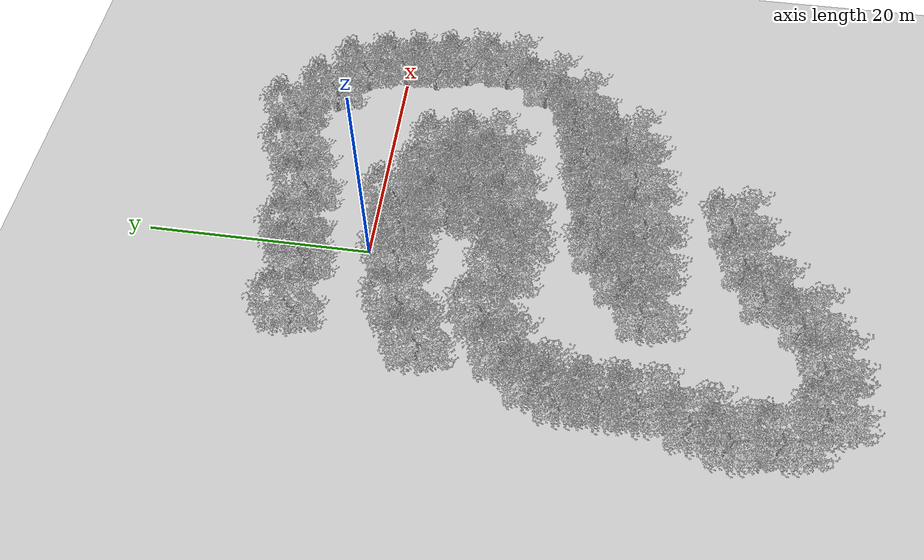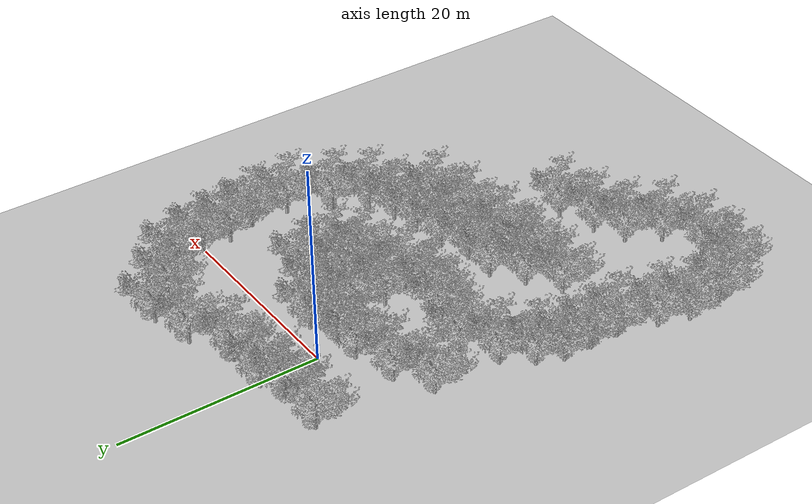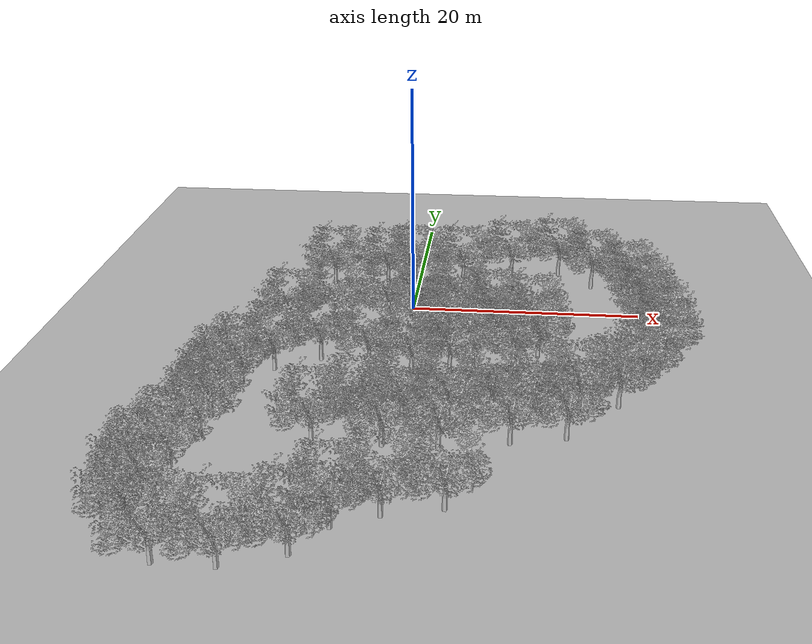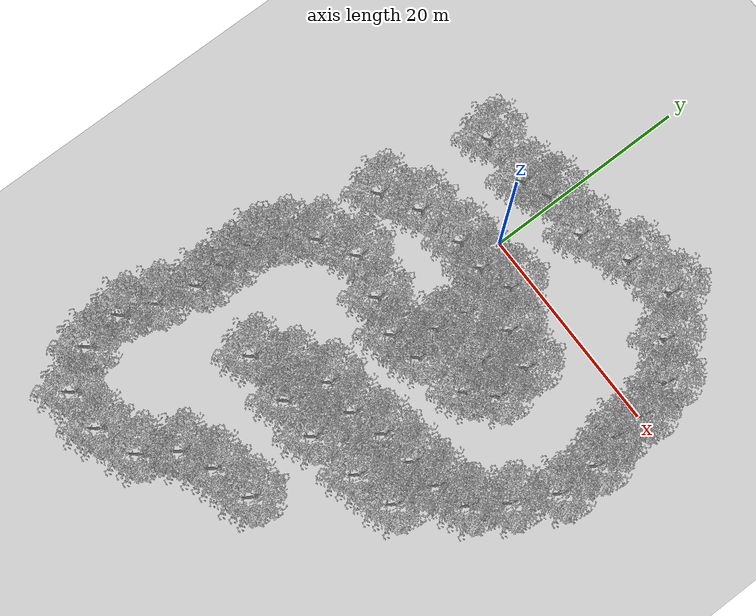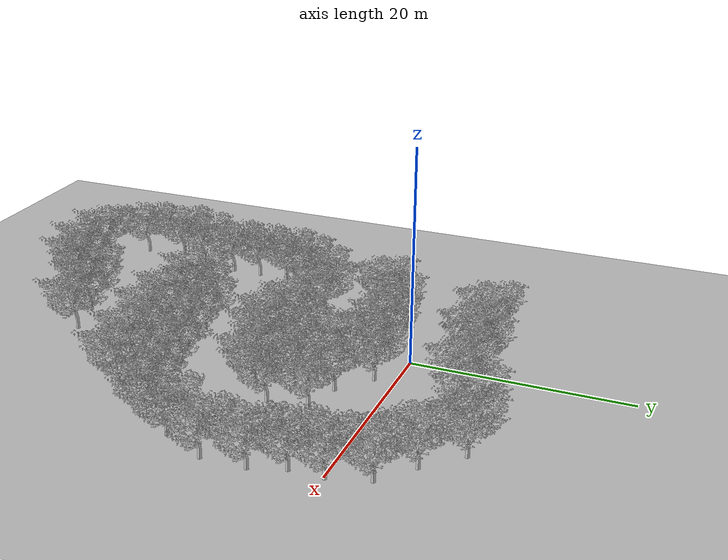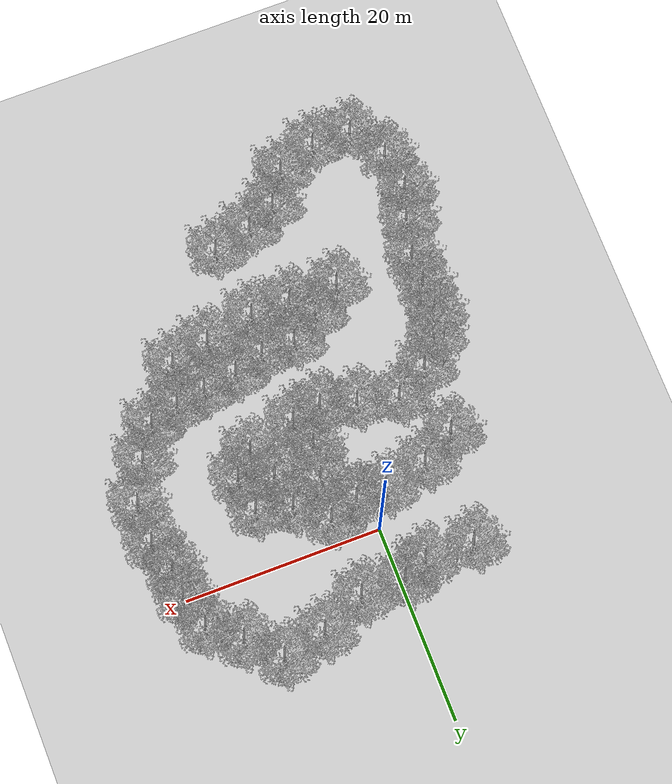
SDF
<gazebo version="1.2">
 <world name="default">
  <scene>
   <grid>0</grid>
   <ambient>0.000000 0.000000 0.000000 1.000000</ambient>
   <background>0.700000 0.700000 0.700000 1.000000</background>
   <shadows>1</shadows>
  </scene>
  <light name="sun" type="directional">
   <pose>0.000000 0.000000 10.000000 0.000000 -0.000000 0.000000</pose>
   <diffuse>0.800000 0.800000 0.800000 1.000000</diffuse>
   <specular>0.100000 0.100000 0.100000 1.000000</specular>
   <attenuation>
    <range>1000.000000</range>
    <constant>0.900000</constant>
    <linear>0.100000</linear>
    <quadratic>0.010000</quadratic>
   </attenuation>
   <direction>0.500000 0.000000 -1.000000</direction>
  </light>
  <model name="ground_plane">
   <static>1</static>
   <link name="link">
    <collision name="collision">
     <geometry>
      <plane><normal>0.000000 0.000000 1.000000</normal><size>100.000000 100.000000</size></plane>
     </geometry>
     <surface><friction><ode><mu>100.000000</mu><mu2>50.000000</mu2></ode></friction></surface>
    </collision>
    <visual name="visual">
     <cast_shadows>0</cast_shadows>
     <geometry>
      <plane><normal>0.000000 0.000000 1.000000</normal><size>100.000000 100.000000</size></plane>
     </geometry>
     <material>
      <script><uri>file://media/materials/scripts/gazebo.material</uri><name>Gazebo/Grey</name></script>
     </material>
    </visual>
    <velocity_decay><linear>0.000000</linear><angular>0.000000</angular></velocity_decay>
   </link>
  </model>
  <physics type="ode">
   <update_rate>1000.000000</update_rate>
   <gravity>0.000000 0.000000 -9.800000</gravity>
  </physics>
  <model name="finihed">
   <pose>8.508060 8.000000 0.000000 0.000000 -0.000000 0.000000</pose>
   <static>1</static>
   <link name="link">
    <inertial>
     <mass>10.000000</mass>
     <inertia>
      <ixx>0.001000</ixx>
      <ixy>0.000000</ixy>
      <ixz>0.000000</ixz>
      <iyy>0.001000</iyy>
      <iyz>0.000000</iyz>
      <izz>0.001000</izz>
     </inertia>
    </inertial>
    <collision name="collision">
     <geometry><cylinder><radius>0.150000</radius><length>5.000000</length></cylinder></geometry>
    </collision>
    <visual name="visual">
     <geometry>
      <mesh><uri>model://finihed/meshes/finihed.dae</uri><scale>1.000000 1.000000 1.000000</scale></mesh>
     </geometry>
    </visual>
    <velocity_decay><linear>0.000000</linear><angular>0.000000</angular></velocity_decay>
   </link>
  </model>
  <model name="finihed_0">
   <pose>-0.515080 6.000000 0.000000 0.000000 -0.000000 0.000000</pose>
   <static>1</static>
   <link name="link">
    <inertial>
     <mass>10.000000</mass>
     <inertia>
      <ixx>0.001000</ixx>
      <ixy>0.000000</ixy>
      <ixz>0.000000</ixz>
      <iyy>0.001000</iyy>
      <iyz>0.000000</iyz>
      <izz>0.001000</izz>
     </inertia>
    </inertial>
    <collision name="collision">
     <geometry><cylinder><radius>0.150000</radius><length>5.000000</length></cylinder></geometry>
    </collision>
    <visual name="visual">
     <geometry>
      <mesh><uri>model://finihed/meshes/finihed.dae</uri><scale>1.000000 1.000000 1.000000</scale></mesh>
     </geometry>
    </visual>
    <velocity_decay><linear>0.000000</linear><angular>0.000000</angular></velocity_decay>
   </link>
  </model>
  <model name="finihed_1">
   <pose>20.000000 0.000000 0.000000 0.000000 -0.000000 0.000000</pose>
   <static>1</static>
   <link name="link">
    <inertial>
     <mass>10.000000</mass>
     <inertia>
      <ixx>0.001000</ixx>
      <ixy>0.000000</ixy>
      <ixz>0.000000</ixz>
      <iyy>0.001000</iyy>
      <iyz>0.000000</iyz>
      <izz>0.001000</izz>
     </inertia>
    </inertial>
    <collision name="collision">
     <geometry><cylinder><radius>0.150000</radius><length>5.000000</length></cylinder></geometry>
    </collision>
    <visual name="visual">
     <geometry>
      <mesh><uri>model://finihed/meshes/finihed.dae</uri><scale>1.000000 1.000000 1.000000</scale></mesh>
     </geometry>
    </visual>
    <velocity_decay><linear>0.000000</linear><angular>0.000000</angular></velocity_decay>
   </link>
  </model>
  <model name="finihed_2">
   <pose>16.000000 6.000000 0.000000 0.000000 -0.000000 0.000000</pose>
   <static>1</static>
   <link name="link">
    <inertial>
     <mass>10.000000</mass>
     <inertia>
      <ixx>0.001000</ixx>
      <ixy>0.000000</ixy>
      <ixz>0.000000</ixz>
      <iyy>0.001000</iyy>
      <iyz>0.000000</iyz>
      <izz>0.001000</izz>
     </inertia>
    </inertial>
    <collision name="collision">
     <geometry><cylinder><radius>0.150000</radius><length>5.000000</length></cylinder></geometry>
    </collision>
    <visual name="visual">
     <geometry>
      <mesh><uri>model://finihed/meshes/finihed.dae</uri><scale>1.000000 1.000000 1.000000</scale></mesh>
     </geometry>
    </visual>
    <velocity_decay><linear>0.000000</linear><angular>0.000000</angular></velocity_decay>
   </link>
  </model>
  <model name="finihed_3">
   <pose>-8.000000 5.000000 0.000000 0.000000 -0.000000 0.000000</pose>
   <static>1</static>
   <link name="link">
    <inertial>
     <mass>10.000000</mass>
     <inertia>
      <ixx>0.001000</ixx>
      <ixy>0.000000</ixy>
      <ixz>0.000000</ixz>
      <iyy>0.001000</iyy>
      <iyz>0.000000</iyz>
      <izz>0.001000</izz>
     </inertia>
    </inertial>
    <collision name="collision">
     <geometry><cylinder><radius>0.150000</radius><length>5.000000</length></cylinder></geometry>
    </collision>
    <visual name="visual">
     <geometry>
      <mesh><uri>model://finihed/meshes/finihed.dae</uri><scale>1.000000 1.000000 1.000000</scale></mesh>
     </geometry>
    </visual>
    <velocity_decay><linear>0.000000</linear><angular>0.000000</angular></velocity_decay>
   </link>
  </model>
  <model name="finihed_4">
   <pose>1.000000 -3.000000 0.000000 0.000000 -0.000000 0.000000</pose>
   <static>1</static>
   <link name="link">
    <inertial>
     <mass>10.000000</mass>
     <inertia>
      <ixx>0.001000</ixx>
      <ixy>0.000000</ixy>
      <ixz>0.000000</ixz>
      <iyy>0.001000</iyy>
      <iyz>0.000000</iyz>
      <izz>0.001000</izz>
     </inertia>
    </inertial>
    <collision name="collision">
     <geometry><cylinder><radius>0.150000</radius><length>5.000000</length></cylinder></geometry>
    </collision>
    <visual name="visual">
     <geometry>
      <mesh><uri>model://finihed/meshes/finihed.dae</uri><scale>1.000000 1.000000 1.000000</scale></mesh>
     </geometry>
    </visual>
    <velocity_decay><linear>0.000000</linear><angular>0.000000</angular></velocity_decay>
   </link>
  </model>
  <model name="finihed_5">
   <pose>7.000000 -4.502550 0.000000 0.000000 -0.000000 0.000000</pose>
   <static>1</static>
   <link name="link">
    <inertial>
     <mass>10.000000</mass>
     <inertia>
      <ixx>0.001000</ixx>
      <ixy>0.000000</ixy>
      <ixz>0.000000</ixz>
      <iyy>0.001000</iyy>
      <iyz>0.000000</iyz>
      <izz>0.001000</izz>
     </inertia>
    </inertial>
    <collision name="collision">
     <geometry><cylinder><radius>0.150000</radius><length>5.000000</length></cylinder></geometry>
    </collision>
    <visual name="visual">
     <geometry>
      <mesh><uri>model://finihed/meshes/finihed.dae</uri><scale>1.000000 1.000000 1.000000</scale></mesh>
     </geometry>
    </visual>
    <velocity_decay><linear>0.000000</linear><angular>0.000000</angular></velocity_decay>
   </link>
  </model>
  <model name="finihed_6">
   <pose>11.000000 -9.000000 0.000000 0.000000 -0.000000 0.000000</pose>
   <static>1</static>
   <link name="link">
    <inertial>
     <mass>10.000000</mass>
     <inertia>
      <ixx>0.001000</ixx>
      <ixy>0.000000</ixy>
      <ixz>0.000000</ixz>
      <iyy>0.001000</iyy>
      <iyz>0.000000</iyz>
      <izz>0.001000</izz>
     </inertia>
    </inertial>
    <collision name="collision">
     <geometry><cylinder><radius>0.150000</radius><length>5.000000</length></cylinder></geometry>
    </collision>
    <visual name="visual">
     <geometry>
      <mesh><uri>model://finihed/meshes/finihed.dae</uri><scale>1.000000 1.000000 1.000000</scale></mesh>
     </geometry>
    </visual>
    <velocity_decay><linear>0.000000</linear><angular>0.000000</angular></velocity_decay>
   </link>
  </model>
  <model name="finihed_7">
   <pose>19.000000 3.502910 0.000000 0.000000 -0.000000 0.000000</pose>
   <static>1</static>
   <link name="link">
    <inertial>
     <mass>10.000000</mass>
     <inertia>
      <ixx>0.001000</ixx>
      <ixy>0.000000</ixy>
      <ixz>0.000000</ixz>
      <iyy>0.001000</iyy>
      <iyz>0.000000</iyz>
      <izz>0.001000</izz>
     </inertia>
    </inertial>
    <collision name="collision">
     <geometry><cylinder><radius>0.150000</radius><length>5.000000</length></cylinder></geometry>
    </collision>
    <visual name="visual">
     <geometry>
      <mesh><uri>model://finihed/meshes/finihed.dae</uri><scale>1.000000 1.000000 1.000000</scale></mesh>
     </geometry>
    </visual>
    <velocity_decay><linear>0.000000</linear><angular>0.000000</angular></velocity_decay>
   </link>
  </model>
  <model name="finihed_8">
   <pose>13.000000 9.000000 0.000000 0.000000 -0.000000 0.000000</pose>
   <static>1</static>
   <link name="link">
    <inertial>
     <mass>10.000000</mass>
     <inertia>
      <ixx>0.001000</ixx>
      <ixy>0.000000</ixy>
      <ixz>0.000000</ixz>
      <iyy>0.001000</iyy>
      <iyz>0.000000</iyz>
      <izz>0.001000</izz>
     </inertia>
    </inertial>
    <collision name="collision">
     <geometry><cylinder><radius>0.150000</radius><length>5.000000</length></cylinder></geometry>
    </collision>
    <visual name="visual">
     <geometry>
      <mesh><uri>model://finihed/meshes/finihed.dae</uri><scale>1.000000 1.000000 1.000000</scale></mesh>
     </geometry>
    </visual>
    <velocity_decay><linear>0.000000</linear><angular>0.000000</angular></velocity_decay>
   </link>
  </model>
  <model name="finihed_9">
   <pose>4.000000 6.000000 0.000000 0.000000 -0.000000 0.000000</pose>
   <static>1</static>
   <link name="link">
    <inertial>
     <mass>10.000000</mass>
     <inertia>
      <ixx>0.001000</ixx>
      <ixy>0.000000</ixy>
      <ixz>0.000000</ixz>
      <iyy>0.001000</iyy>
      <iyz>0.000000</iyz>
      <izz>0.001000</izz>
     </inertia>
    </inertial>
    <collision name="collision">
     <geometry><cylinder><radius>0.150000</radius><length>5.000000</length></cylinder></geometry>
    </collision>
    <visual name="visual">
     <geometry>
      <mesh><uri>model://finihed/meshes/finihed.dae</uri><scale>1.000000 1.000000 1.000000</scale></mesh>
     </geometry>
    </visual>
    <velocity_decay><linear>0.000000</linear><angular>0.000000</angular></velocity_decay>
   </link>
  </model>
  <model name="finihed_10">
   <pose>4.000000 -2.000000 0.000000 0.000000 -0.000000 0.000000</pose>
   <static>1</static>
   <link name="link">
    <inertial>
     <mass>10.000000</mass>
     <inertia>
      <ixx>0.001000</ixx>
      <ixy>0.000000</ixy>
      <ixz>0.000000</ixz>
      <iyy>0.001000</iyy>
      <iyz>0.000000</iyz>
      <izz>0.001000</izz>
     </inertia>
    </inertial>
    <collision name="collision">
     <geometry><cylinder><radius>0.150000</radius><length>5.000000</length></cylinder></geometry>
    </collision>
    <visual name="visual">
     <geometry>
      <mesh><uri>model://finihed/meshes/finihed.dae</uri><scale>1.000000 1.000000 1.000000</scale></mesh>
     </geometry>
    </visual>
    <velocity_decay><linear>0.000000</linear><angular>0.000000</angular></velocity_decay>
   </link>
  </model>
  <model name="finihed_11">
   <pose>10.517400 -5.416000 0.000000 0.000000 -0.000000 0.000000</pose>
   <static>1</static>
   <link name="link">
    <inertial>
     <mass>10.000000</mass>
     <inertia>
      <ixx>0.001000</ixx>
      <ixy>0.000000</ixy>
      <ixz>0.000000</ixz>
      <iyy>0.001000</iyy>
      <iyz>0.000000</iyz>
      <izz>0.001000</izz>
     </inertia>
    </inertial>
    <collision name="collision">
     <geometry><cylinder><radius>0.150000</radius><length>5.000000</length></cylinder></geometry>
    </collision>
    <visual name="visual">
     <geometry>
      <mesh><uri>model://finihed/meshes/finihed.dae</uri><scale>1.000000 1.000000 1.000000</scale></mesh>
     </geometry>
    </visual>
    <velocity_decay><linear>0.000000</linear><angular>0.000000</angular></velocity_decay>
   </link>
  </model>
  <model name="finihed_12">
   <pose>20.000000 -3.000000 0.000000 0.000000 -0.000000 0.000000</pose>
   <static>1</static>
   <link name="link">
    <inertial>
     <mass>10.000000</mass>
     <inertia>
      <ixx>0.001000</ixx>
      <ixy>0.000000</ixy>
      <ixz>0.000000</ixz>
      <iyy>0.001000</iyy>
      <iyz>0.000000</iyz>
      <izz>0.001000</izz>
     </inertia>
    </inertial>
    <collision name="collision">
     <geometry><cylinder><radius>0.150000</radius><length>5.000000</length></cylinder></geometry>
    </collision>
    <visual name="visual">
     <geometry>
      <mesh><uri>model://finihed/meshes/finihed.dae</uri><scale>1.000000 1.000000 1.000000</scale></mesh>
     </geometry>
    </visual>
    <velocity_decay><linear>0.000000</linear><angular>0.000000</angular></velocity_decay>
   </link>
  </model>
  <model name="finihed_13">
   <pose>21.000000 -6.000000 0.000000 0.000000 -0.000000 0.000000</pose>
   <static>1</static>
   <link name="link">
    <inertial>
     <mass>10.000000</mass>
     <inertia>
      <ixx>0.001000</ixx>
      <ixy>0.000000</ixy>
      <ixz>0.000000</ixz>
      <iyy>0.001000</iyy>
      <iyz>0.000000</iyz>
      <izz>0.001000</izz>
     </inertia>
    </inertial>
    <collision name="collision">
     <geometry><cylinder><radius>0.150000</radius><length>5.000000</length></cylinder></geometry>
    </collision>
    <visual name="visual">
     <geometry>
      <mesh><uri>model://finihed/meshes/finihed.dae</uri><scale>1.000000 1.000000 1.000000</scale></mesh>
     </geometry>
    </visual>
    <velocity_decay><linear>0.000000</linear><angular>0.000000</angular></velocity_decay>
   </link>
  </model>
  <model name="finihed_14">
   <pose>21.000000 -10.000000 0.000000 0.000000 -0.000000 0.000000</pose>
   <static>1</static>
   <link name="link">
    <inertial>
     <mass>10.000000</mass>
     <inertia>
      <ixx>0.001000</ixx>
      <ixy>0.000000</ixy>
      <ixz>0.000000</ixz>
      <iyy>0.001000</iyy>
      <iyz>0.000000</iyz>
      <izz>0.001000</izz>
     </inertia>
    </inertial>
    <collision name="collision">
     <geometry><cylinder><radius>0.150000</radius><length>5.000000</length></cylinder></geometry>
    </collision>
    <visual name="visual">
     <geometry>
      <mesh><uri>model://finihed/meshes/finihed.dae</uri><scale>1.000000 1.000000 1.000000</scale></mesh>
     </geometry>
    </visual>
    <velocity_decay><linear>0.000000</linear><angular>0.000000</angular></velocity_decay>
   </link>
  </model>
  <model name="finihed_15">
   <pose>19.000000 -14.000000 0.000000 0.000000 -0.000000 0.000000</pose>
   <static>1</static>
   <link name="link">
    <inertial>
     <mass>10.000000</mass>
     <inertia>
      <ixx>0.001000</ixx>
      <ixy>0.000000</ixy>
      <ixz>0.000000</ixz>
      <iyy>0.001000</iyy>
      <iyz>0.000000</iyz>
      <izz>0.001000</izz>
     </inertia>
    </inertial>
    <collision name="collision">
     <geometry><cylinder><radius>0.150000</radius><length>5.000000</length></cylinder></geometry>
    </collision>
    <visual name="visual">
     <geometry>
      <mesh><uri>model://finihed/meshes/finihed.dae</uri><scale>1.000000 1.000000 1.000000</scale></mesh>
     </geometry>
    </visual>
    <velocity_decay><linear>0.000000</linear><angular>0.000000</angular></velocity_decay>
   </link>
  </model>
  <model name="finihed_16">
   <pose>17.000000 -17.000000 0.000000 0.000000 -0.000000 0.000000</pose>
   <static>1</static>
   <link name="link">
    <inertial>
     <mass>10.000000</mass>
     <inertia>
      <ixx>0.001000</ixx>
      <ixy>0.000000</ixy>
      <ixz>0.000000</ixz>
      <iyy>0.001000</iyy>
      <iyz>0.000000</iyz>
      <izz>0.001000</izz>
     </inertia>
    </inertial>
    <collision name="collision">
     <geometry><cylinder><radius>0.150000</radius><length>5.000000</length></cylinder></geometry>
    </collision>
    <visual name="visual">
     <geometry>
      <mesh><uri>model://finihed/meshes/finihed.dae</uri><scale>1.000000 1.000000 1.000000</scale></mesh>
     </geometry>
    </visual>
    <velocity_decay><linear>0.000000</linear><angular>0.000000</angular></velocity_decay>
   </link>
  </model>
  <model name="finihed_17">
   <pose>14.000000 -18.000000 0.000000 0.000000 -0.000000 0.000000</pose>
   <static>1</static>
   <link name="link">
    <inertial>
     <mass>10.000000</mass>
     <inertia>
      <ixx>0.001000</ixx>
      <ixy>0.000000</ixy>
      <ixz>0.000000</ixz>
      <iyy>0.001000</iyy>
      <iyz>0.000000</iyz>
      <izz>0.001000</izz>
     </inertia>
    </inertial>
    <collision name="collision">
     <geometry><cylinder><radius>0.150000</radius><length>5.000000</length></cylinder></geometry>
    </collision>
    <visual name="visual">
     <geometry>
      <mesh><uri>model://finihed/meshes/finihed.dae</uri><scale>1.000000 1.000000 1.000000</scale></mesh>
     </geometry>
    </visual>
    <velocity_decay><linear>0.000000</linear><angular>0.000000</angular></velocity_decay>
   </link>
  </model>
  <model name="finihed_18">
   <pose>9.000000 -11.000000 0.000000 0.000000 -0.000000 0.000000</pose>
   <static>1</static>
   <link name="link">
    <inertial>
     <mass>10.000000</mass>
     <inertia>
      <ixx>0.001000</ixx>
      <ixy>0.000000</ixy>
      <ixz>0.000000</ixz>
      <iyy>0.001000</iyy>
      <iyz>0.000000</iyz>
      <izz>0.001000</izz>
     </inertia>
    </inertial>
    <collision name="collision">
     <geometry><cylinder><radius>0.150000</radius><length>5.000000</length></cylinder></geometry>
    </collision>
    <visual name="visual">
     <geometry>
      <mesh><uri>model://finihed/meshes/finihed.dae</uri><scale>1.000000 1.000000 1.000000</scale></mesh>
     </geometry>
    </visual>
    <velocity_decay><linear>0.000000</linear><angular>0.000000</angular></velocity_decay>
   </link>
  </model>
  <model name="finihed_19">
   <pose>4.000000 -12.426700 0.000000 0.000000 -0.000000 0.000000</pose>
   <static>1</static>
   <link name="link">
    <inertial>
     <mass>10.000000</mass>
     <inertia>
      <ixx>0.001000</ixx>
      <ixy>0.000000</ixy>
      <ixz>0.000000</ixz>
      <iyy>0.001000</iyy>
      <iyz>0.000000</iyz>
      <izz>0.001000</izz>
     </inertia>
    </inertial>
    <collision name="collision">
     <geometry><cylinder><radius>0.150000</radius><length>5.000000</length></cylinder></geometry>
    </collision>
    <visual name="visual">
     <geometry>
      <mesh><uri>model://finihed/meshes/finihed.dae</uri><scale>1.000000 1.000000 1.000000</scale></mesh>
     </geometry>
    </visual>
    <velocity_decay><linear>0.000000</linear><angular>0.000000</angular></velocity_decay>
   </link>
  </model>
  <model name="finihed_20">
   <pose>1.000000 -13.000000 0.000000 0.000000 -0.000000 0.000000</pose>
   <static>1</static>
   <link name="link">
    <inertial>
     <mass>10.000000</mass>
     <inertia>
      <ixx>0.001000</ixx>
      <ixy>0.000000</ixy>
      <ixz>0.000000</ixz>
      <iyy>0.001000</iyy>
      <iyz>0.000000</iyz>
      <izz>0.001000</izz>
     </inertia>
    </inertial>
    <collision name="collision">
     <geometry><cylinder><radius>0.150000</radius><length>5.000000</length></cylinder></geometry>
    </collision>
    <visual name="visual">
     <geometry>
      <mesh><uri>model://finihed/meshes/finihed.dae</uri><scale>1.000000 1.000000 1.000000</scale></mesh>
     </geometry>
    </visual>
    <velocity_decay><linear>0.000000</linear><angular>0.000000</angular></velocity_decay>
   </link>
  </model>
  <model name="finihed_21">
   <pose>11.000000 -18.522200 0.000000 0.000000 -0.000000 0.000000</pose>
   <static>1</static>
   <link name="link">
    <inertial>
     <mass>10.000000</mass>
     <inertia>
      <ixx>0.001000</ixx>
      <ixy>0.000000</ixy>
      <ixz>0.000000</ixz>
      <iyy>0.001000</iyy>
      <iyz>0.000000</iyz>
      <izz>0.001000</izz>
     </inertia>
    </inertial>
    <collision name="collision">
     <geometry><cylinder><radius>0.150000</radius><length>5.000000</length></cylinder></geometry>
    </collision>
    <visual name="visual">
     <geometry>
      <mesh><uri>model://finihed/meshes/finihed.dae</uri><scale>1.000000 1.000000 1.000000</scale></mesh>
     </geometry>
    </visual>
    <velocity_decay><linear>0.000000</linear><angular>0.000000</angular></velocity_decay>
   </link>
  </model>
  <model name="finihed_22">
   <pose>7.524440 -19.000000 0.000000 0.000000 -0.000000 0.000000</pose>
   <static>1</static>
   <link name="link">
    <inertial>
     <mass>10.000000</mass>
     <inertia>
      <ixx>0.001000</ixx>
      <ixy>0.000000</ixy>
      <ixz>0.000000</ixz>
      <iyy>0.001000</iyy>
      <iyz>0.000000</iyz>
      <izz>0.001000</izz>
     </inertia>
    </inertial>
    <collision name="collision">
     <geometry><cylinder><radius>0.150000</radius><length>5.000000</length></cylinder></geometry>
    </collision>
    <visual name="visual">
     <geometry>
      <mesh><uri>model://finihed/meshes/finihed.dae</uri><scale>1.000000 1.000000 1.000000</scale></mesh>
     </geometry>
    </visual>
    <velocity_decay><linear>0.000000</linear><angular>0.000000</angular></velocity_decay>
   </link>
  </model>
  <model name="finihed_23">
   <pose>4.400020 -20.000000 0.000000 0.000000 -0.000000 0.000000</pose>
   <static>1</static>
   <link name="link">
    <inertial>
     <mass>10.000000</mass>
     <inertia>
      <ixx>0.001000</ixx>
      <ixy>0.000000</ixy>
      <ixz>0.000000</ixz>
      <iyy>0.001000</iyy>
      <iyz>0.000000</iyz>
      <izz>0.001000</izz>
     </inertia>
    </inertial>
    <collision name="collision">
     <geometry><cylinder><radius>0.150000</radius><length>5.000000</length></cylinder></geometry>
    </collision>
    <visual name="visual">
     <geometry>
      <mesh><uri>model://finihed/meshes/finihed.dae</uri><scale>1.000000 1.000000 1.000000</scale></mesh>
     </geometry>
    </visual>
    <velocity_decay><linear>0.000000</linear><angular>0.000000</angular></velocity_decay>
   </link>
  </model>
  <model name="finihed_24">
   <pose>1.000000 -20.000000 0.000000 0.000000 -0.000000 0.000000</pose>
   <static>1</static>
   <link name="link">
    <inertial>
     <mass>10.000000</mass>
     <inertia>
      <ixx>0.001000</ixx>
      <ixy>0.000000</ixy>
      <ixz>0.000000</ixz>
      <iyy>0.001000</iyy>
      <iyz>0.000000</iyz>
      <izz>0.001000</izz>
     </inertia>
    </inertial>
    <collision name="collision">
     <geometry><cylinder><radius>0.150000</radius><length>5.000000</length></cylinder></geometry>
    </collision>
    <visual name="visual">
     <geometry>
      <mesh><uri>model://finihed/meshes/finihed.dae</uri><scale>1.000000 1.000000 1.000000</scale></mesh>
     </geometry>
    </visual>
    <velocity_decay><linear>0.000000</linear><angular>0.000000</angular></velocity_decay>
   </link>
  </model>
  <model name="finihed_25">
   <pose>7.596890 -8.000000 0.000000 0.000000 -0.000000 0.000000</pose>
   <static>1</static>
   <link name="link">
    <inertial>
     <mass>10.000000</mass>
     <inertia>
      <ixx>0.001000</ixx>
      <ixy>0.000000</ixy>
      <ixz>0.000000</ixz>
      <iyy>0.001000</iyy>
      <iyz>0.000000</iyz>
      <izz>0.001000</izz>
     </inertia>
    </inertial>
    <collision name="collision">
     <geometry><cylinder><radius>0.150000</radius><length>5.000000</length></cylinder></geometry>
    </collision>
    <visual name="visual">
     <geometry>
      <mesh><uri>model://finihed/meshes/finihed.dae</uri><scale>1.000000 1.000000 1.000000</scale></mesh>
     </geometry>
    </visual>
    <velocity_decay><linear>0.000000</linear><angular>0.000000</angular></velocity_decay>
   </link>
  </model>
  <model name="finihed_26">
   <pose>3.431210 -6.503010 0.000000 0.000000 -0.000000 0.000000</pose>
   <static>1</static>
   <link name="link">
    <inertial>
     <mass>10.000000</mass>
     <inertia>
      <ixx>0.001000</ixx>
      <ixy>0.000000</ixy>
      <ixz>0.000000</ixz>
      <iyy>0.001000</iyy>
      <iyz>0.000000</iyz>
      <izz>0.001000</izz>
     </inertia>
    </inertial>
    <collision name="collision">
     <geometry><cylinder><radius>0.150000</radius><length>5.000000</length></cylinder></geometry>
    </collision>
    <visual name="visual">
     <geometry>
      <mesh><uri>model://finihed/meshes/finihed.dae</uri><scale>1.000000 1.000000 1.000000</scale></mesh>
     </geometry>
    </visual>
    <velocity_decay><linear>0.000000</linear><angular>0.000000</angular></velocity_decay>
   </link>
  </model>
  <model name="finihed_27">
   <pose>3.000000 -9.525420 0.000000 0.000000 -0.000000 0.000000</pose>
   <static>1</static>
   <link name="link">
    <inertial>
     <mass>10.000000</mass>
     <inertia>
      <ixx>0.001000</ixx>
      <ixy>0.000000</ixy>
      <ixz>0.000000</ixz>
      <iyy>0.001000</iyy>
      <iyz>0.000000</iyz>
      <izz>0.001000</izz>
     </inertia>
    </inertial>
    <collision name="collision">
     <geometry><cylinder><radius>0.150000</radius><length>5.000000</length></cylinder></geometry>
    </collision>
    <visual name="visual">
     <geometry>
      <mesh><uri>model://finihed/meshes/finihed.dae</uri><scale>1.000000 1.000000 1.000000</scale></mesh>
     </geometry>
    </visual>
    <velocity_decay><linear>0.000000</linear><angular>0.000000</angular></velocity_decay>
   </link>
  </model>
  <model name="finihed_28">
   <pose>-3.000000 5.000000 0.000000 0.000000 -0.000000 0.000000</pose>
   <static>1</static>
   <link name="link">
    <inertial>
     <mass>10.000000</mass>
     <inertia>
      <ixx>0.001000</ixx>
      <ixy>0.000000</ixy>
      <ixz>0.000000</ixz>
      <iyy>0.001000</iyy>
      <iyz>0.000000</iyz>
      <izz>0.001000</izz>
     </inertia>
    </inertial>
    <collision name="collision">
     <geometry><cylinder><radius>0.150000</radius><length>5.000000</length></cylinder></geometry>
    </collision>
    <visual name="visual">
     <geometry>
      <mesh><uri>model://finihed/meshes/finihed.dae</uri><scale>1.000000 1.000000 1.000000</scale></mesh>
     </geometry>
    </visual>
    <velocity_decay><linear>0.000000</linear><angular>0.000000</angular></velocity_decay>
   </link>
  </model>
  <model name="finihed_29">
   <pose>-2.522530 -12.000000 0.000000 0.000000 -0.000000 0.000000</pose>
   <static>1</static>
   <link name="link">
    <inertial>
     <mass>10.000000</mass>
     <inertia>
      <ixx>0.001000</ixx>
      <ixy>0.000000</ixy>
      <ixz>0.000000</ixz>
      <iyy>0.001000</iyy>
      <iyz>0.000000</iyz>
      <izz>0.001000</izz>
     </inertia>
    </inertial>
    <collision name="collision">
     <geometry><cylinder><radius>0.150000</radius><length>5.000000</length></cylinder></geometry>
    </collision>
    <visual name="visual">
     <geometry>
      <mesh><uri>model://finihed/meshes/finihed.dae</uri><scale>1.000000 1.000000 1.000000</scale></mesh>
     </geometry>
    </visual>
    <velocity_decay><linear>0.000000</linear><angular>0.000000</angular></velocity_decay>
   </link>
  </model>
  <model name="finihed_30">
   <pose>-6.565320 -11.000000 0.000000 0.000000 -0.000000 0.000000</pose>
   <static>1</static>
   <link name="link">
    <inertial>
     <mass>10.000000</mass>
     <inertia>
      <ixx>0.001000</ixx>
      <ixy>0.000000</ixy>
      <ixz>0.000000</ixz>
      <iyy>0.001000</iyy>
      <iyz>0.000000</iyz>
      <izz>0.001000</izz>
     </inertia>
    </inertial>
    <collision name="collision">
     <geometry><cylinder><radius>0.150000</radius><length>5.000000</length></cylinder></geometry>
    </collision>
    <visual name="visual">
     <geometry>
      <mesh><uri>model://finihed/meshes/finihed.dae</uri><scale>1.000000 1.000000 1.000000</scale></mesh>
     </geometry>
    </visual>
    <velocity_decay><linear>0.000000</linear><angular>0.000000</angular></velocity_decay>
   </link>
  </model>
  <model name="finihed_31">
   <pose>-10.000000 -13.000000 0.000000 0.000000 -0.000000 0.000000</pose>
   <static>1</static>
   <link name="link">
    <inertial>
     <mass>10.000000</mass>
     <inertia>
      <ixx>0.001000</ixx>
      <ixy>0.000000</ixy>
      <ixz>0.000000</ixz>
      <iyy>0.001000</iyy>
      <iyz>0.000000</iyz>
      <izz>0.001000</izz>
     </inertia>
    </inertial>
    <collision name="collision">
     <geometry><cylinder><radius>0.150000</radius><length>5.000000</length></cylinder></geometry>
    </collision>
    <visual name="visual">
     <geometry>
      <mesh><uri>model://finihed/meshes/finihed.dae</uri><scale>1.000000 1.000000 1.000000</scale></mesh>
     </geometry>
    </visual>
    <velocity_decay><linear>0.000000</linear><angular>0.000000</angular></velocity_decay>
   </link>
  </model>
  <model name="finihed_32">
   <pose>-12.000000 -15.574100 0.000000 0.000000 -0.000000 0.000000</pose>
   <static>1</static>
   <link name="link">
    <inertial>
     <mass>10.000000</mass>
     <inertia>
      <ixx>0.001000</ixx>
      <ixy>0.000000</ixy>
      <ixz>0.000000</ixz>
      <iyy>0.001000</iyy>
      <iyz>0.000000</iyz>
      <izz>0.001000</izz>
     </inertia>
    </inertial>
    <collision name="collision">
     <geometry><cylinder><radius>0.150000</radius><length>5.000000</length></cylinder></geometry>
    </collision>
    <visual name="visual">
     <geometry>
      <mesh><uri>model://finihed/meshes/finihed.dae</uri><scale>1.000000 1.000000 1.000000</scale></mesh>
     </geometry>
    </visual>
    <velocity_decay><linear>0.000000</linear><angular>0.000000</angular></velocity_decay>
   </link>
  </model>
  <model name="finihed_33">
   <pose>-13.000000 -18.000000 0.000000 0.000000 -0.000000 0.000000</pose>
   <static>1</static>
   <link name="link">
    <inertial>
     <mass>10.000000</mass>
     <inertia>
      <ixx>0.001000</ixx>
      <ixy>0.000000</ixy>
      <ixz>0.000000</ixz>
      <iyy>0.001000</iyy>
      <iyz>0.000000</iyz>
      <izz>0.001000</izz>
     </inertia>
    </inertial>
    <collision name="collision">
     <geometry><cylinder><radius>0.150000</radius><length>5.000000</length></cylinder></geometry>
    </collision>
    <visual name="visual">
     <geometry>
      <mesh><uri>model://finihed/meshes/finihed.dae</uri><scale>1.000000 1.000000 1.000000</scale></mesh>
     </geometry>
    </visual>
    <velocity_decay><linear>0.000000</linear><angular>0.000000</angular></velocity_decay>
   </link>
  </model>
  <model name="finihed_34">
   <pose>-13.000000 -21.000000 0.000000 0.000000 -0.000000 0.000000</pose>
   <static>1</static>
   <link name="link">
    <inertial>
     <mass>10.000000</mass>
     <inertia>
      <ixx>0.001000</ixx>
      <ixy>0.000000</ixy>
      <ixz>0.000000</ixz>
      <iyy>0.001000</iyy>
      <iyz>0.000000</iyz>
      <izz>0.001000</izz>
     </inertia>
    </inertial>
    <collision name="collision">
     <geometry><cylinder><radius>0.150000</radius><length>5.000000</length></cylinder></geometry>
    </collision>
    <visual name="visual">
     <geometry>
      <mesh><uri>model://finihed/meshes/finihed.dae</uri><scale>1.000000 1.000000 1.000000</scale></mesh>
     </geometry>
    </visual>
    <velocity_decay><linear>0.000000</linear><angular>0.000000</angular></velocity_decay>
   </link>
  </model>
  <model name="finihed_35">
   <pose>-2.000000 -22.000000 0.000000 0.000000 -0.000000 0.000000</pose>
   <static>1</static>
   <link name="link">
    <inertial>
     <mass>10.000000</mass>
     <inertia>
      <ixx>0.001000</ixx>
      <ixy>0.000000</ixy>
      <ixz>0.000000</ixz>
      <iyy>0.001000</iyy>
      <iyz>0.000000</iyz>
      <izz>0.001000</izz>
     </inertia>
    </inertial>
    <collision name="collision">
     <geometry><cylinder><radius>0.150000</radius><length>5.000000</length></cylinder></geometry>
    </collision>
    <visual name="visual">
     <geometry>
      <mesh><uri>model://finihed/meshes/finihed.dae</uri><scale>1.000000 1.000000 1.000000</scale></mesh>
     </geometry>
    </visual>
    <velocity_decay><linear>0.000000</linear><angular>0.000000</angular></velocity_decay>
   </link>
  </model>
  <model name="finihed_36">
   <pose>-5.000000 -24.000000 0.000000 0.000000 -0.000000 0.000000</pose>
   <static>1</static>
   <link name="link">
    <inertial>
     <mass>10.000000</mass>
     <inertia>
      <ixx>0.001000</ixx>
      <ixy>0.000000</ixy>
      <ixz>0.000000</ixz>
      <iyy>0.001000</iyy>
      <iyz>0.000000</iyz>
      <izz>0.001000</izz>
     </inertia>
    </inertial>
    <collision name="collision">
     <geometry><cylinder><radius>0.150000</radius><length>5.000000</length></cylinder></geometry>
    </collision>
    <visual name="visual">
     <geometry>
      <mesh><uri>model://finihed/meshes/finihed.dae</uri><scale>1.000000 1.000000 1.000000</scale></mesh>
     </geometry>
    </visual>
    <velocity_decay><linear>0.000000</linear><angular>0.000000</angular></velocity_decay>
   </link>
  </model>
  <model name="finihed_37">
   <pose>-13.000000 -24.000000 0.000000 0.000000 -0.000000 0.000000</pose>
   <static>1</static>
   <link name="link">
    <inertial>
     <mass>10.000000</mass>
     <inertia>
      <ixx>0.001000</ixx>
      <ixy>0.000000</ixy>
      <ixz>0.000000</ixz>
      <iyy>0.001000</iyy>
      <iyz>0.000000</iyz>
      <izz>0.001000</izz>
     </inertia>
    </inertial>
    <collision name="collision">
     <geometry><cylinder><radius>0.150000</radius><length>5.000000</length></cylinder></geometry>
    </collision>
    <visual name="visual">
     <geometry>
      <mesh><uri>model://finihed/meshes/finihed.dae</uri><scale>1.000000 1.000000 1.000000</scale></mesh>
     </geometry>
    </visual>
    <velocity_decay><linear>0.000000</linear><angular>0.000000</angular></velocity_decay>
   </link>
  </model>
  <model name="finihed_38">
   <pose>0.000000 -24.000000 0.000000 0.000000 -0.000000 0.000000</pose>
   <static>1</static>
   <link name="link">
    <inertial>
     <mass>10.000000</mass>
     <inertia>
      <ixx>0.001000</ixx>
      <ixy>0.000000</ixy>
      <ixz>0.000000</ixz>
      <iyy>0.001000</iyy>
      <iyz>0.000000</iyz>
      <izz>0.001000</izz>
     </inertia>
    </inertial>
    <collision name="collision">
     <geometry><cylinder><radius>0.150000</radius><length>5.000000</length></cylinder></geometry>
    </collision>
    <visual name="visual">
     <geometry>
      <mesh><uri>model://finihed/meshes/finihed.dae</uri><scale>1.000000 1.000000 1.000000</scale></mesh>
     </geometry>
    </visual>
    <velocity_decay><linear>0.000000</linear><angular>0.000000</angular></velocity_decay>
   </link>
  </model>
  <model name="finihed_39">
   <pose>-14.000000 -28.000000 0.000000 0.000000 -0.000000 0.000000</pose>
   <static>1</static>
   <link name="link">
    <inertial>
     <mass>10.000000</mass>
     <inertia>
      <ixx>0.001000</ixx>
      <ixy>0.000000</ixy>
      <ixz>0.000000</ixz>
      <iyy>0.001000</iyy>
      <iyz>0.000000</iyz>
      <izz>0.001000</izz>
     </inertia>
    </inertial>
    <collision name="collision">
     <geometry><cylinder><radius>0.150000</radius><length>5.000000</length></cylinder></geometry>
    </collision>
    <visual name="visual">
     <geometry>
      <mesh><uri>model://finihed/meshes/finihed.dae</uri><scale>1.000000 1.000000 1.000000</scale></mesh>
     </geometry>
    </visual>
    <velocity_decay><linear>0.000000</linear><angular>0.000000</angular></velocity_decay>
   </link>
  </model>
  <model name="finihed_40">
   <pose>-15.000000 -31.000000 0.000000 0.000000 -0.000000 0.000000</pose>
   <static>1</static>
   <link name="link">
    <inertial>
     <mass>10.000000</mass>
     <inertia>
      <ixx>0.001000</ixx>
      <ixy>0.000000</ixy>
      <ixz>0.000000</ixz>
      <iyy>0.001000</iyy>
      <iyz>0.000000</iyz>
      <izz>0.001000</izz>
     </inertia>
    </inertial>
    <collision name="collision">
     <geometry><cylinder><radius>0.150000</radius><length>5.000000</length></cylinder></geometry>
    </collision>
    <visual name="visual">
     <geometry>
      <mesh><uri>model://finihed/meshes/finihed.dae</uri><scale>1.000000 1.000000 1.000000</scale></mesh>
     </geometry>
    </visual>
    <velocity_decay><linear>0.000000</linear><angular>0.000000</angular></velocity_decay>
   </link>
  </model>
  <model name="finihed_41">
   <pose>-14.443900 -35.000000 0.000000 0.000000 -0.000000 0.000000</pose>
   <static>1</static>
   <link name="link">
    <inertial>
     <mass>10.000000</mass>
     <inertia>
      <ixx>0.001000</ixx>
      <ixy>0.000000</ixy>
      <ixz>0.000000</ixz>
      <iyy>0.001000</iyy>
      <iyz>0.000000</iyz>
      <izz>0.001000</izz>
     </inertia>
    </inertial>
    <collision name="collision">
     <geometry><cylinder><radius>0.150000</radius><length>5.000000</length></cylinder></geometry>
    </collision>
    <visual name="visual">
     <geometry>
      <mesh><uri>model://finihed/meshes/finihed.dae</uri><scale>1.000000 1.000000 1.000000</scale></mesh>
     </geometry>
    </visual>
    <velocity_decay><linear>0.000000</linear><angular>0.000000</angular></velocity_decay>
   </link>
  </model>
  <model name="finihed_42">
   <pose>-12.000000 -38.460400 0.000000 0.000000 -0.000000 0.000000</pose>
   <static>1</static>
   <link name="link">
    <inertial>
     <mass>10.000000</mass>
     <inertia>
      <ixx>0.001000</ixx>
      <ixy>0.000000</ixy>
      <ixz>0.000000</ixz>
      <iyy>0.001000</iyy>
      <iyz>0.000000</iyz>
      <izz>0.001000</izz>
     </inertia>
    </inertial>
    <collision name="collision">
     <geometry><cylinder><radius>0.150000</radius><length>5.000000</length></cylinder></geometry>
    </collision>
    <visual name="visual">
     <geometry>
      <mesh><uri>model://finihed/meshes/finihed.dae</uri><scale>1.000000 1.000000 1.000000</scale></mesh>
     </geometry>
    </visual>
    <velocity_decay><linear>0.000000</linear><angular>0.000000</angular></velocity_decay>
   </link>
  </model>
  <model name="finihed_43">
   <pose>-8.000000 -38.527200 0.000000 0.000000 -0.000000 0.000000</pose>
   <static>1</static>
   <link name="link">
    <inertial>
     <mass>10.000000</mass>
     <inertia>
      <ixx>0.001000</ixx>
      <ixy>0.000000</ixy>
      <ixz>0.000000</ixz>
      <iyy>0.001000</iyy>
      <iyz>0.000000</iyz>
      <izz>0.001000</izz>
     </inertia>
    </inertial>
    <collision name="collision">
     <geometry><cylinder><radius>0.150000</radius><length>5.000000</length></cylinder></geometry>
    </collision>
    <visual name="visual">
     <geometry>
      <mesh><uri>model://finihed/meshes/finihed.dae</uri><scale>1.000000 1.000000 1.000000</scale></mesh>
     </geometry>
    </visual>
    <velocity_decay><linear>0.000000</linear><angular>0.000000</angular></velocity_decay>
   </link>
  </model>
  <model name="finihed_44">
   <pose>-4.000000 -37.000000 0.000000 0.000000 -0.000000 0.000000</pose>
   <static>1</static>
   <link name="link">
    <inertial>
     <mass>10.000000</mass>
     <inertia>
      <ixx>0.001000</ixx>
      <ixy>0.000000</ixy>
      <ixz>0.000000</ixz>
      <iyy>0.001000</iyy>
      <iyz>0.000000</iyz>
      <izz>0.001000</izz>
     </inertia>
    </inertial>
    <collision name="collision">
     <geometry><cylinder><radius>0.150000</radius><length>5.000000</length></cylinder></geometry>
    </collision>
    <visual name="visual">
     <geometry>
      <mesh><uri>model://finihed/meshes/finihed.dae</uri><scale>1.000000 1.000000 1.000000</scale></mesh>
     </geometry>
    </visual>
    <velocity_decay><linear>0.000000</linear><angular>0.000000</angular></velocity_decay>
   </link>
  </model>
  <model name="finihed_45">
   <pose>-2.000000 -34.000000 0.000000 0.000000 -0.000000 0.000000</pose>
   <static>1</static>
   <link name="link">
    <inertial>
     <mass>10.000000</mass>
     <inertia>
      <ixx>0.001000</ixx>
      <ixy>0.000000</ixy>
      <ixz>0.000000</ixz>
      <iyy>0.001000</iyy>
      <iyz>0.000000</iyz>
      <izz>0.001000</izz>
     </inertia>
    </inertial>
    <collision name="collision">
     <geometry><cylinder><radius>0.150000</radius><length>5.000000</length></cylinder></geometry>
    </collision>
    <visual name="visual">
     <geometry>
      <mesh><uri>model://finihed/meshes/finihed.dae</uri><scale>1.000000 1.000000 1.000000</scale></mesh>
     </geometry>
    </visual>
    <velocity_decay><linear>0.000000</linear><angular>0.000000</angular></velocity_decay>
   </link>
  </model>
  <model name="finihed_46">
   <pose>4.000000 -24.000000 0.000000 0.000000 -0.000000 0.000000</pose>
   <static>1</static>
   <link name="link">
    <inertial>
     <mass>10.000000</mass>
     <inertia>
      <ixx>0.001000</ixx>
      <ixy>0.000000</ixy>
      <ixz>0.000000</ixz>
      <iyy>0.001000</iyy>
      <iyz>0.000000</iyz>
      <izz>0.001000</izz>
     </inertia>
    </inertial>
    <collision name="collision">
     <geometry><cylinder><radius>0.150000</radius><length>5.000000</length></cylinder></geometry>
    </collision>
    <visual name="visual">
     <geometry>
      <mesh><uri>model://finihed/meshes/finihed.dae</uri><scale>1.000000 1.000000 1.000000</scale></mesh>
     </geometry>
    </visual>
    <velocity_decay><linear>0.000000</linear><angular>0.000000</angular></velocity_decay>
   </link>
  </model>
  <model name="finihed_47">
   <pose>1.000000 -32.535200 0.000000 0.000000 -0.000000 0.000000</pose>
   <static>1</static>
   <link name="link">
    <inertial>
     <mass>10.000000</mass>
     <inertia>
      <ixx>0.001000</ixx>
      <ixy>0.000000</ixy>
      <ixz>0.000000</ixz>
      <iyy>0.001000</iyy>
      <iyz>0.000000</iyz>
      <izz>0.001000</izz>
     </inertia>
    </inertial>
    <collision name="collision">
     <geometry><cylinder><radius>0.150000</radius><length>5.000000</length></cylinder></geometry>
    </collision>
    <visual name="visual">
     <geometry>
      <mesh><uri>model://finihed/meshes/finihed.dae</uri><scale>1.000000 1.000000 1.000000</scale></mesh>
     </geometry>
    </visual>
    <velocity_decay><linear>0.000000</linear><angular>0.000000</angular></velocity_decay>
   </link>
  </model>
  <model name="finihed_48">
   <pose>5.000000 -31.467000 0.000000 0.000000 -0.000000 0.000000</pose>
   <static>1</static>
   <link name="link">
    <inertial>
     <mass>10.000000</mass>
     <inertia>
      <ixx>0.001000</ixx>
      <ixy>0.000000</ixy>
      <ixz>0.000000</ixz>
      <iyy>0.001000</iyy>
      <iyz>0.000000</iyz>
      <izz>0.001000</izz>
     </inertia>
    </inertial>
    <collision name="collision">
     <geometry><cylinder><radius>0.150000</radius><length>5.000000</length></cylinder></geometry>
    </collision>
    <visual name="visual">
     <geometry>
      <mesh><uri>model://finihed/meshes/finihed.dae</uri><scale>1.000000 1.000000 1.000000</scale></mesh>
     </geometry>
    </visual>
    <velocity_decay><linear>0.000000</linear><angular>0.000000</angular></velocity_decay>
   </link>
  </model>
  <model name="finihed_49">
   <pose>9.000000 -23.000000 0.000000 0.000000 -0.000000 0.000000</pose>
   <static>1</static>
   <link name="link">
    <inertial>
     <mass>10.000000</mass>
     <inertia>
      <ixx>0.001000</ixx>
      <ixy>0.000000</ixy>
      <ixz>0.000000</ixz>
      <iyy>0.001000</iyy>
      <iyz>0.000000</iyz>
      <izz>0.001000</izz>
     </inertia>
    </inertial>
    <collision name="collision">
     <geometry><cylinder><radius>0.150000</radius><length>5.000000</length></cylinder></geometry>
    </collision>
    <visual name="visual">
     <geometry>
      <mesh><uri>model://finihed/meshes/finihed.dae</uri><scale>1.000000 1.000000 1.000000</scale></mesh>
     </geometry>
    </visual>
    <velocity_decay><linear>0.000000</linear><angular>0.000000</angular></velocity_decay>
   </link>
  </model>
  <model name="finihed_50">
   <pose>13.000000 -22.000000 0.000000 0.000000 -0.000000 0.000000</pose>
   <static>1</static>
   <link name="link">
    <inertial>
     <mass>10.000000</mass>
     <inertia>
      <ixx>0.001000</ixx>
      <ixy>0.000000</ixy>
      <ixz>0.000000</ixz>
      <iyy>0.001000</iyy>
      <iyz>0.000000</iyz>
      <izz>0.001000</izz>
     </inertia>
    </inertial>
    <collision name="collision">
     <geometry><cylinder><radius>0.150000</radius><length>5.000000</length></cylinder></geometry>
    </collision>
    <visual name="visual">
     <geometry>
      <mesh><uri>model://finihed/meshes/finihed.dae</uri><scale>1.000000 1.000000 1.000000</scale></mesh>
     </geometry>
    </visual>
    <velocity_decay><linear>0.000000</linear><angular>0.000000</angular></velocity_decay>
   </link>
  </model>
  <model name="finihed_51">
   <pose>-2.000000 -3.000000 0.000000 0.000000 -0.000000 0.000000</pose>
   <static>1</static>
   <link name="link">
    <inertial>
     <mass>10.000000</mass>
     <inertia>
      <ixx>0.001000</ixx>
      <ixy>0.000000</ixy>
      <ixz>0.000000</ixz>
      <iyy>0.001000</iyy>
      <iyz>0.000000</iyz>
      <izz>0.001000</izz>
     </inertia>
    </inertial>
    <collision name="collision">
     <geometry><cylinder><radius>0.150000</radius><length>5.000000</length></cylinder></geometry>
    </collision>
    <visual name="visual">
     <geometry>
      <mesh><uri>model://finihed/meshes/finihed.dae</uri><scale>1.000000 1.000000 1.000000</scale></mesh>
     </geometry>
    </visual>
    <velocity_decay><linear>0.000000</linear><angular>0.000000</angular></velocity_decay>
   </link>
  </model>
  <model name="finihed_52">
   <pose>-6.511420 -4.000000 0.000000 0.000000 -0.000000 0.000000</pose>
   <static>1</static>
   <link name="link">
    <inertial>
     <mass>10.000000</mass>
     <inertia>
      <ixx>0.001000</ixx>
      <ixy>0.000000</ixy>
      <ixz>0.000000</ixz>
      <iyy>0.001000</iyy>
      <iyz>0.000000</iyz>
      <izz>0.001000</izz>
     </inertia>
    </inertial>
    <collision name="collision">
     <geometry><cylinder><radius>0.150000</radius><length>5.000000</length></cylinder></geometry>
    </collision>
    <visual name="visual">
     <geometry>
      <mesh><uri>model://finihed/meshes/finihed.dae</uri><scale>1.000000 1.000000 1.000000</scale></mesh>
     </geometry>
    </visual>
    <velocity_decay><linear>0.000000</linear><angular>0.000000</angular></velocity_decay>
   </link>
  </model>
  <model name="finihed_53">
   <pose>-10.000000 -6.000000 0.000000 0.000000 -0.000000 0.000000</pose>
   <static>1</static>
   <link name="link">
    <inertial>
     <mass>10.000000</mass>
     <inertia>
      <ixx>0.001000</ixx>
      <ixy>0.000000</ixy>
      <ixz>0.000000</ixz>
      <iyy>0.001000</iyy>
      <iyz>0.000000</iyz>
      <izz>0.001000</izz>
     </inertia>
    </inertial>
    <collision name="collision">
     <geometry><cylinder><radius>0.150000</radius><length>5.000000</length></cylinder></geometry>
    </collision>
    <visual name="visual">
     <geometry>
      <mesh><uri>model://finihed/meshes/finihed.dae</uri><scale>1.000000 1.000000 1.000000</scale></mesh>
     </geometry>
    </visual>
    <velocity_decay><linear>0.000000</linear><angular>0.000000</angular></velocity_decay>
   </link>
  </model>
 </world>
</gazebo>
